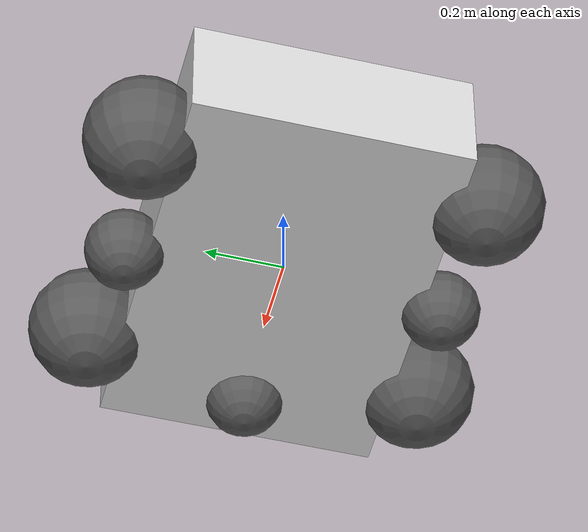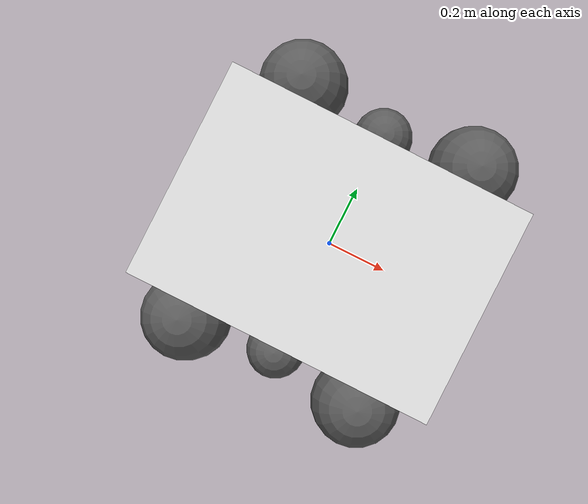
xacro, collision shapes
<?xml version="1.0"?>
<robot name="mecabot_gz" xmlns:xacro="http://www.ros.org/wiki/xacro">

  <xacro:include filename="mecabot_gz.include.xacro"/>

  <!-- BODY STARTS HERE -->
  <link name="base_link" >
    <xacro:property name="base_link_x" value="1"/>
    <xacro:property name="base_link_y" value="0.7"/>
    <xacro:property name="base_link_z" value="0.30"/>

    <visual>
      <origin xyz="0 0 ${base_link_z / 4}"/>
      <geometry>
        <box size="${base_link_x} ${base_link_y} ${base_link_z}"/>
      </geometry>
      <material name="silver"/>
    </visual>

    <collision>
      <origin xyz="0 0 ${base_link_z / 4}"/>
      <geometry>
        <box size="${base_link_x} ${base_link_y} ${base_link_z}"/>
      </geometry>
    </collision>

    <xacro:inertial_box mass="3" x="${base_link_x}" y="${base_link_y}" z="${base_link_z}">
      <origin />
    </xacro:inertial_box>
  </link>

  <!-- GENERATE MECANUM WHEELS -->
  <xacro:gen_mecanum_wheel name="front_left_mecanum" direction="left">
    <material name="grey"/>
  </xacro:gen_mecanum_wheel>
  <xacro:gen_mecanum_wheel name="front_right_mecanum" direction="right">
    <material name="grey"/>
  </xacro:gen_mecanum_wheel>
  <xacro:gen_mecanum_wheel name="rear_right_mecanum" direction="left">
    <material name="grey"/>
  </xacro:gen_mecanum_wheel>
  <xacro:gen_mecanum_wheel name="rear_left_mecanum" direction="right">
    <material name="grey"/>
  </xacro:gen_mecanum_wheel>

  <!-- GENERATE OMNI WHEELS -->
  <xacro:gen_omni_wheel name="y_front_omni">
    <material name="grey"/>
  </xacro:gen_omni_wheel>
  <xacro:gen_omni_wheel name="x_right_omni">
    <material name="grey"/>
  </xacro:gen_omni_wheel>
  <xacro:gen_omni_wheel name="x_left_omni">
    <material name="grey"/>
  </xacro:gen_omni_wheel>

  <!-- OMNI WHEEL JOINTS -->
  <xacro:property name="omni_gap" value="0.4"/>
  <xacro:property name="omni_joint_friction" value="0.1"/>
  <xacro:property name="omni_joint_damping" value="0"/>
  <joint name="y_front_omni_joint" type="continuous">
    <origin xyz="${omni_gap} 0 ${omni_radius - mecanum_radius}" rpy="0 0 -${pi / 2}"/>
    <parent link="base_link"/>
    <child link="y_front_omni_link"/>
    <axis xyz="0 1 0"/>
    <dynamics damping="${omni_joint_damping}" friction="${omni_joint_friction}"/>
  </joint>

  <joint name="x_right_omni_joint" type="continuous">
    <origin xyz="0 ${omni_gap} ${omni_radius - mecanum_radius}" rpy="0 0 0"/>
    <parent link="base_link"/>
    <child link="x_right_omni_link"/>
    <axis xyz="0 1 0"/>
    <dynamics damping="${omni_joint_damping}" friction="${omni_joint_friction}"/>
  </joint>

  <joint name="x_left_omni_joint" type="continuous">
    <origin xyz="0 -${omni_gap} ${omni_radius - mecanum_radius}" rpy="0 0 ${pi}"/>
    <parent link="base_link"/>
    <child link="x_left_omni_link"/>
    <axis xyz="0 1 0"/>
    <dynamics damping="${omni_joint_damping}" friction="${omni_joint_friction}"/>
  </joint>

  <!-- MECANUM WHEEL JOINTS -->
  <xacro:property name="mecanum_joint_friction" value="0"/>
  <joint name="front_left_mecanum_joint" type="continuous">
    <origin xyz="${base_link_x / 2 * 0.625} ${base_link_y / 2 + mecanum_radius / 2} 0"/>
    <parent link="base_link"/>
    <child link="front_left_mecanum_link"/>
    <axis xyz="0 1 0"/>
    <dynamics friction="${mecanum_joint_friction}"/>
  </joint>

  <joint name="front_right_mecanum_joint" type="continuous">
    <origin xyz="${base_link_x / 2 * 0.625} -${base_link_y / 2 + mecanum_radius / 2} 0"/>
    <parent link="base_link"/>
    <child link="front_right_mecanum_link"/>
    <axis xyz="0 1 0"/>
    <dynamics friction="${mecanum_joint_friction}"/>
  </joint>

  <joint name="rear_right_mecanum_joint" type="continuous">
    <origin xyz="-${base_link_x / 2 * 0.625} -${base_link_y / 2 + mecanum_radius / 2} 0"/>
    <parent link="base_link"/>
    <child link="rear_right_mecanum_link"/>
    <axis xyz="0 1 0"/>
    <dynamics friction="${mecanum_joint_friction}"/>
  </joint>

  <joint name="rear_left_mecanum_joint" type="continuous">
    <origin xyz="-${base_link_x / 2 * 0.625} ${base_link_y / 2 + mecanum_radius / 2} 0"/>
    <parent link="base_link"/>
    <child link="rear_left_mecanum_link"/>
    <axis xyz="0 1 0"/>
    <dynamics friction="${mecanum_joint_friction}"/>
  </joint>

  <!-- GAZEBO PLUGINS -->
  <gazebo>

    <plugin
      name="gz_ros2_control::GazeboSimROS2ControlPlugin"
      filename="libgz_ros2_control-system">
      <parameters>$(find mecabot_gz)/config/controller_config.yaml</parameters>
    </plugin>

  </gazebo>

  <!-- ROS2 Control -->
  <ros2_control name="GazeboSimSystem" type="system">
    <hardware>
      <plugin>gz_ros2_control/GazeboSimSystem</plugin>
    </hardware>
    <joint name="y_front_omni_joint">
      <state_interface name="position"/>
    </joint>
    <joint name="x_right_omni_joint">
      <state_interface name="position"/>
    </joint>
    <joint name="x_left_omni_joint">
      <state_interface name="position"/>
    </joint>
    <joint name="front_left_mecanum_joint">
      <command_interface name="velocity">
        <param name="min">-100</param>
        <param name="max">100</param>
      </command_interface>
      <state_interface name="position"/>
      <state_interface name="velocity"/>
    </joint>
    <joint name="front_right_mecanum_joint">
      <command_interface name="velocity">
        <param name="min">-100</param>
        <param name="max">100</param>
      </command_interface>
      <state_interface name="position"/>
      <state_interface name="velocity"/>
    </joint>
    <joint name="rear_left_mecanum_joint">
      <command_interface name="velocity">
        <param name="min">-100</param>
        <param name="max">100</param>
      </command_interface>
      <state_interface name="position"/>
      <state_interface name="velocity"/>
    </joint>
    <joint name="rear_right_mecanum_joint">
      <command_interface name="velocity">
        <param name="min">-100</param>
        <param name="max">100</param>
      </command_interface>
      <state_interface name="position"/>
      <state_interface name="velocity"/>
    </joint>
  </ros2_control>

</robot>

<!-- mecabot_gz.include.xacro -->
<robot xmlns:xacro="http://www.ros.org/wiki/xacro" xmlns:gz="http://gazebosim.org/schema">

  <!-- MATERIALS -->
  <material name="grey">
    <color rgba="0.35 0.35 0.35 1"/>
  </material>

  <material name="silver">
    <color rgba="0.86 0.86 0.86 1"/>
  </material>

  <!-- MACROS -->
  <xacro:macro name="inertial_box" params="mass x y z *origin">
    <inertial>
      <xacro:insert_block name="origin"/>
      <mass value="${mass}" />
      <inertia ixx="${(1/12) * mass * (y*y+z*z)}" ixy="0.0" ixz="0.0"
              iyy="${(1/12) * mass * (x*x+z*z)}" iyz="0.0"
              izz="${(1/12) * mass * (x*x+y*y)}" />
    </inertial>
  </xacro:macro>

  <!-- MECANUM WHEEL GENERATION -->
  <xacro:property name="mecanum_radius" value="0.15"/>
  <xacro:macro name="gen_mecanum_wheel" params="name *material direction">

    <link name="${name}_link">
      <visual>
        <origin xyz="0 0 0"/>
        <geometry>
          <mesh
            filename="file://$(find mecabot_gz)/robot_desc/mesh/mecanum_${direction}.STL"
            scale="${mecanum_radius * 2 / 100} ${mecanum_radius * 2 / 100} ${mecanum_radius * 2 / 100}"
          /> <!-- Scale mesh to radius -->
        </geometry>
        <xacro:insert_block name="material"/>
      </visual>

      <collision>
        <origin xyz="0 0 0"/>
        <geometry>
          <sphere radius="${mecanum_radius}"/>
        </geometry>
      </collision>

      <inertial>
        <!-- Values from Gazebo Harmonic mecanum_drive.sdf -->
        <mass value="0.5"/>
        <inertia
          ixx="0.036458"
          ixy="0"
          ixz="0"
          iyy="0.036458"
          iyz="0"
          izz="0.03125"
        />
      </inertial>
    </link>

    <gazebo reference="${name}_link">
      <!-- Implemented this way to include the expressed_in attribute -->
      <collision>
        <surface>
          <contact>
            <ode/>
          </contact>
          <friction>
            <ode>
              <mu>1.5</mu>
              <mu2>0.5</mu2>
              <xacro:if value="${direction == 'left'}">
                <fdir1 gz:expressed_in="base_link">1 -1 0</fdir1>
              </xacro:if>
              <xacro:if value="${direction == 'right'}">
                <fdir1 gz:expressed_in="base_link">1 1 0</fdir1>
              </xacro:if>
            </ode>
          </friction>
        </surface>
      </collision>
    </gazebo>

  </xacro:macro>

  <!-- OMNI WHEEL GENERATION -->
  <xacro:property name="omni_radius" value="0.1"/>
  <xacro:macro name="gen_omni_wheel" params="name *material">
    <link name="${name}_link">
      <visual>
        <origin xyz="0 0 0" rpy="-${pi/2} 0 0"/>
        <geometry>
          <mesh
            filename="file://$(find mecabot_gz)/robot_desc/mesh/omni_wheel.stl"
            scale="${omni_radius / 5} ${omni_radius / 5} ${omni_radius / 5}"
          /> <!-- Scale mesh to radius -->
        </geometry>
        <xacro:insert_block name="material"/>
      </visual>

      <collision>
        <origin xyz="0 0 0"/>
        <geometry>
          <sphere radius="${omni_radius}"/>
        </geometry>
      </collision>

      <inertial>
        <!-- Values are fine tuned to achieve free wheel behavior of suspensed caster -->
        <mass value="0.25"/>
        <inertia
          ixx="0.000072"
          ixy="0"
          ixz="0"
          iyy="0.000072"
          iyz="0"
          izz="0.000062"
        />
      </inertial>
    </link>

    <gazebo reference="${name}_link">
      <!-- Implemented this way to include the expressed_in attribute -->
      <collision>
        <surface>
          <contact>
            <ode/>
          </contact>
          <friction>
            <ode>
              <mu>0.2</mu>
              <mu2>0</mu2>
              <fdir1>1 0 0</fdir1>
            </ode>
          </friction>
        </surface>
      </collision>
    </gazebo>
  </xacro:macro>

</robot>
